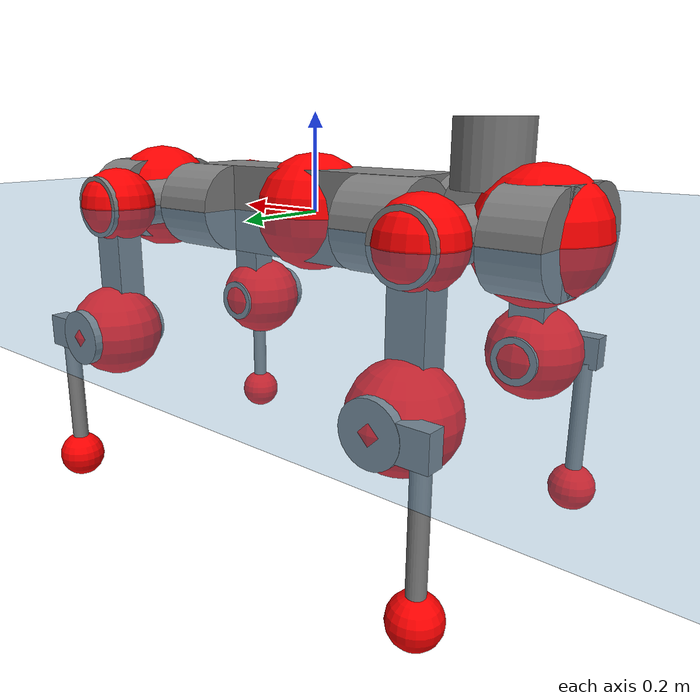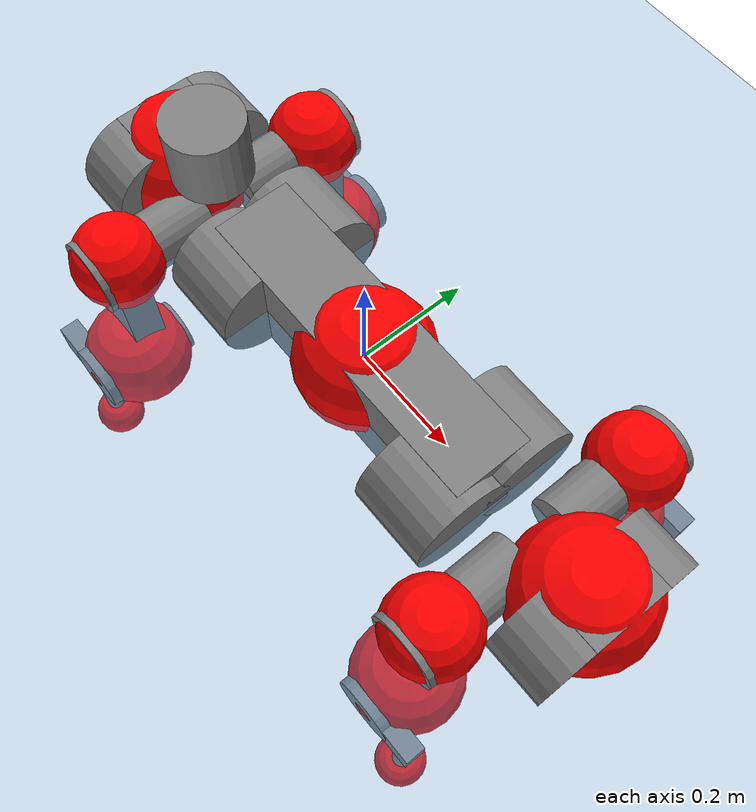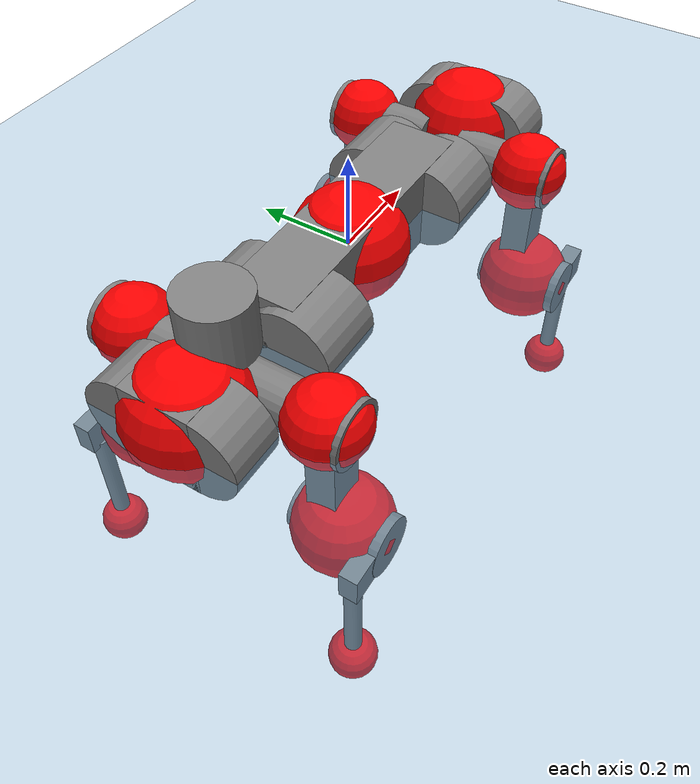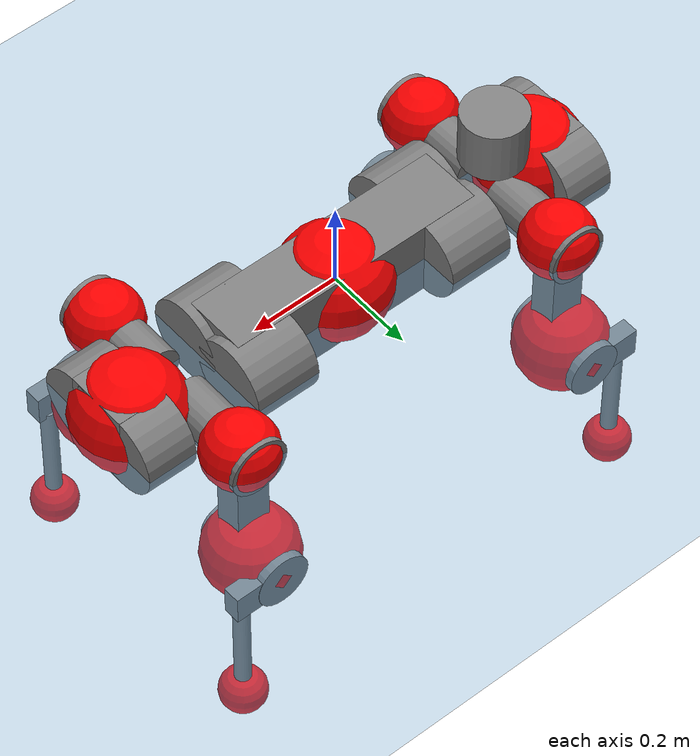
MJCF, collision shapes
<mujoco model="anymal_c">
  <compiler angle="radian" assetdir="assets" balanceinertia="true" inertiafromgeom="false"/>

  <option timestep="0.005" density="1.2" viscosity="2e-05"/>

  <size nkey="1"/>

  <visual>
    <quality shadowsize="8192"/>
    <map shadowclip="0.5"/>
  </visual>

  <default>
    <default class="/">
      <material specular="0" shininess="0.25"/>
      <geom contype="0" conaffinity="0" group="1" solref="-1000 -80"/>
      <site size="0.01 0.005 0.005" group="5"/>
      <general forcelimited="true" forcerange="-80 80" biastype="affine" gainprm="80" biasprm="0 -80 -2"/>
      <default class="anymal_c">
        <joint armature="0.01" damping="0.01" frictionloss="0.1"/>
        <default class="visual">
          <geom type="mesh" group="2"/>
          <default class="visual_zflip"/>
        </default>
        <default class="collision">
          <geom type="cylinder" group="3"/>
          <default class="foot">
            <geom size="0.03 0 0" type="sphere" condim="6" priority="1" friction="0.8 0.02 0.01" solimp="0.015 1 0.03"/>
          </default>
        </default>
      </default>
      <default class="reward_collision_sphere">
        <geom group="5" rgba="1 0 0 1"/>
      </default>
    </default>
  </default>

  <asset>
    <texture type="skybox" colorspace="auto" name="//unnamed_texture_0" builtin="gradient" rgb1="0.95 0.95 0.95" rgb2="0.95 0.95 0.95" width="100" height="600"/>
    <texture type="2d" colorspace="auto" name="texplane" builtin="checker" rgb1="0.345 0.575 0.748" rgb2="0.345 0.575 0.748" markrgb="1 1 1" width="512" height="512"/>
    <texture type="2d" colorspace="linear" name="base" file="base.png"/>
    <texture type="2d" colorspace="linear" name="top_shell" file="top_shell.png"/>
    <texture type="2d" colorspace="linear" name="bottom_shell" file="bottom_shell.png"/>
    <texture type="2d" colorspace="linear" name="remote" file="remote.png"/>
    <texture type="2d" colorspace="linear" name="hatch" file="hatch.png"/>
    <texture type="2d" colorspace="linear" name="handle" file="handle.png"/>
    <texture type="2d" colorspace="linear" name="face" file="face.png"/>
    <texture type="2d" colorspace="linear" name="battery" file="battery.png"/>
    <texture type="2d" colorspace="linear" name="lidar_cage" file="lidar_cage.png"/>
    <texture type="2d" colorspace="linear" name="depth_camera" file="depth_camera.png"/>
    <texture type="2d" colorspace="linear" name="wide_angle_camera" file="wide_angle_camera.png"/>
    <texture type="2d" colorspace="linear" name="lidar" file="lidar.png"/>
    <texture type="2d" colorspace="linear" name="drive" file="drive.png"/>
    <texture type="2d" colorspace="linear" name="hip_l" file="hip_l.png"/>
    <texture type="2d" colorspace="linear" name="shank_l" file="shank_l.png"/>
    <texture type="2d" colorspace="linear" name="foot" file="foot.png"/>
    <texture type="2d" colorspace="linear" name="thigh" file="thigh.png"/>
    <texture type="2d" colorspace="linear" name="shank_r" file="shank_r.png"/>
    <texture type="2d" colorspace="linear" name="hip_r" file="hip_r.png"/>
    <material name="MatPlane" class="/" texture="texplane" texuniform="true" texrepeat="2 2" specular="0.9" shininess="0.5"/>
    <material name="black_plastic" class="/" rgba="0.007 0.007 0.007 1"/>
    <material name="green" class="/" rgba="0.052 0.178 0.033 1"/>
    <material name="red" class="/" rgba="0.178 0.006 0.005 1"/>
    <material name="yellow" class="/" rgba="0.178 0.119 0.006 1"/>
    <material name="lwl" class="/" rgba="0.8 0.8 0.8 1"/>
    <material name="base" class="/" texture="base"/>
    <material name="top_shell" class="/" texture="top_shell"/>
    <material name="bottom_shell" class="/" texture="bottom_shell"/>
    <material name="hip_l" class="/" texture="hip_l"/>
    <material name="thigh" class="/" texture="thigh"/>
    <material name="shank_l" class="/" texture="shank_l"/>
    <material name="foot" class="/" texture="foot"/>
    <material name="hip_r" class="/" texture="hip_r"/>
    <material name="shank" class="/" texture="shank_r"/>
    <material name="hatch" class="/" texture="hatch"/>
    <material name="remote" class="/" texture="remote"/>
    <material name="handle" class="/" texture="handle"/>
    <material name="face" class="/" texture="face"/>
    <material name="depth_camera" class="/" texture="depth_camera"/>
    <material name="wide_angle_camera" class="/" texture="wide_angle_camera"/>
    <material name="battery" class="/" texture="battery"/>
    <material name="lidar_cage" class="/" texture="lidar_cage"/>
    <material name="lidar" class="/" texture="lidar"/>
    <material name="drive" class="/" texture="drive"/>
    <mesh name="base_0" class="/" file="base_0.obj"/>
    <mesh name="base_1" class="/" file="base_1.obj"/>
    <mesh name="base_2" class="/" file="base_2.obj"/>
    <mesh name="base_3" class="/" file="base_3.obj"/>
    <mesh name="base_4" class="/" file="base_4.obj"/>
    <mesh name="base_5" class="/" file="base_5.obj"/>
    <mesh name="top_shell" class="/" file="top_shell.obj"/>
    <mesh name="bottom_shell" class="/" file="bottom_shell.obj"/>
    <mesh name="remote" class="/" file="remote.obj"/>
    <mesh name="handle" class="/" file="handle.obj"/>
    <mesh name="face" class="/" file="face.obj"/>
    <mesh name="wide_angle_camera" class="/" file="wide_angle_camera.obj"/>
    <mesh name="depth_camera" class="/" file="depth_camera.obj"/>
    <mesh name="battery" class="/" file="battery.obj"/>
    <mesh name="lidar_cage" class="/" file="lidar_cage.obj"/>
    <mesh name="lidar" class="/" file="lidar.obj"/>
    <mesh name="drive" class="/" file="drive.obj"/>
    <mesh name="hip_l" class="/" file="hip_l.obj"/>
    <mesh name="thigh" class="/" file="thigh.obj"/>
    <mesh name="shank_l" class="/" file="shank_l.obj"/>
    <mesh name="foot" class="/" file="foot.obj"/>
    <mesh name="hip_r" class="/" file="hip_r.obj"/>
    <mesh name="hatch" class="/" file="hatch.obj"/>
    <mesh name="shank_r" class="/" file="shank_r.obj"/>
  </asset>

  <worldbody>
    <geom name="floor" class="/" size="100 100 0.125" type="plane" group="0" material="MatPlane"/>
    <light name="toplight_shadow" class="/" pos="0 0 5" dir="0.0990148 0.0990148 -0.990148" type="directional" ambient="0.04 0.04 0.04" diffuse="0.55 0.55 0.55" specular="0.12 0.12 0.12"/>
    <light name="toplight_fill" class="/" pos="0 0 5" dir="0.0990148 0.0990148 -0.990148" type="directional" castshadow="false" ambient="0.04 0.04 0.04" diffuse="0.3 0.3 0.3" specular="0.08 0.08 0.08"/>
    <body name="trunk" childclass="anymal_c" pos="0.00260801 -0.000528753 0.000120743" quat="0.999999 -0.00120966 -0.000212761 0.000201139">
      <inertial pos="-4.5833e-06 -0.000467832 0.0498501" quat="0.498041 0.502503 0.500427 0.499018" mass="19.0912" diaginertia="1.0767 0.448271 0.20404"/>
      <joint name="//unnamed_joint_0" type="free" armature="0" damping="0" frictionloss="0"/>
      <geom name="//unnamed_geom_1" class="visual" material="green" mesh="base_0"/>
      <geom name="//unnamed_geom_2" class="visual" material="yellow" mesh="base_1"/>
      <geom name="//unnamed_geom_3" class="visual" material="red" mesh="base_2"/>
      <geom name="//unnamed_geom_4" class="visual" material="black_plastic" mesh="base_3"/>
      <geom name="//unnamed_geom_5" class="visual" material="lwl" mesh="base_4"/>
      <geom name="//unnamed_geom_6" class="visual" material="base" mesh="base_5"/>
      <geom name="trunk_1" class="collision" size="0.294084 0.0709858 0.0912675" type="box"/>
      <geom name="trunk_2" class="collision" size="0.0912675 0.073521" pos="0.241888 0.0656616 0" quat="0.707107 0 0.707107 0"/>
      <geom name="trunk_3" class="collision" size="0.0912675 0.073521" pos="-0.241888 0.0656616 0" quat="0.707107 0 0.707107 0"/>
      <geom name="trunk_4" class="collision" size="0.0912675 0.073521" pos="0.241888 -0.0656616 0" quat="0.707107 0 0.707107 0"/>
      <geom name="trunk_5" class="collision" size="0.0912675 0.073521" pos="-0.241888 -0.0656616 0" quat="0.707107 0 0.707107 0"/>
      <geom name="//unnamed_geom_12" class="visual" material="top_shell" mesh="top_shell"/>
      <geom name="//unnamed_geom_13" class="visual" material="bottom_shell" mesh="bottom_shell"/>
      <geom name="//unnamed_geom_14" class="visual" material="remote" mesh="remote"/>
      <geom name="//unnamed_geom_15" class="visual" material="handle" mesh="handle"/>
      <geom name="//unnamed_geom_16" class="visual" pos="0.460977 0 0" quat="1 0 0 0" material="face" mesh="face"/>
      <geom name="trunk_6" class="collision" size="0.0557746 0.0709858 0.0912675" pos="0.522144 0 0" type="box"/>
      <geom name="//unnamed_geom_18" class="collision" size="0.0912675 0.0557746" pos="0.522144 0.0656616 0" quat="0.707107 0 0.707107 0"/>
      <geom name="//unnamed_geom_19" class="collision" size="0.0912675 0.0557746" pos="0.522144 -0.0656616 0" quat="0.707107 0 0.707107 0"/>
      <geom name="//unnamed_geom_20" class="visual" pos="0.513409 0 -0.0280571" quat="0.965926 0 0.258819 0" material="depth_camera" mesh="depth_camera"/>
      <geom name="//unnamed_geom_21" class="visual" pos="0.570521 0 0.0148517" material="wide_angle_camera" mesh="wide_angle_camera"/>
      <geom name="//unnamed_geom_22" class="visual_zflip" pos="-0.460977 0 0" quat="0 0 0 1" material="face" mesh="face"/>
      <geom name="trunk_7" class="collision" size="0.0557746 0.0709858 0.0912675" pos="-0.522144 0 0" quat="0 0 0 1" type="box"/>
      <geom name="//unnamed_geom_24" class="collision" size="0.0912675 0.0557746" pos="-0.522144 -0.0656616 0" quat="0 -0.707107 0 0.707107"/>
      <geom name="//unnamed_geom_25" class="collision" size="0.0912675 0.0557746" pos="-0.522144 0.0656616 0" quat="0 -0.707107 0 0.707107"/>
      <geom name="//unnamed_geom_26" class="visual" pos="-0.513409 0 -0.0280571" quat="0 -0.258819 0 0.965926" material="depth_camera" mesh="depth_camera"/>
      <geom name="//unnamed_geom_27" class="visual_zflip" pos="-0.570521 0 0.0148517" quat="0 0 0 1" material="wide_angle_camera" mesh="wide_angle_camera"/>
      <geom name="//unnamed_geom_28" class="visual" material="battery" mesh="battery"/>
      <geom name="//unnamed_geom_29" class="visual" pos="0 0.0694316 0.0297327" quat="0.683013 -0.183013 0.183013 0.683013" material="depth_camera" mesh="depth_camera"/>
      <geom name="//unnamed_geom_30" class="visual" pos="0 -0.0694316 0.0297327" quat="0.683013 0.183013 0.183013 -0.683013" material="depth_camera" mesh="depth_camera"/>
      <geom name="//unnamed_geom_31" class="visual" pos="-0.404814 0 0.0729193" quat="1 0 0 0" material="lidar_cage" mesh="lidar_cage"/>
      <geom name="trunk_8" class="collision" size="0.0709858 0.060845" pos="-0.404814 0 0.132445"/>
      <geom name="//unnamed_geom_33" class="visual" pos="-0.404814 -6.8401e-05 0.141077" quat="0.707107 0 0 -0.707107" material="lidar" mesh="lidar"/>
      <geom name="//unnamed_geom_34" class="visual" pos="0.333527 0.0975736 -9.32832e-10" quat="0.258819 0.965926 0 0" material="drive" mesh="drive"/>
      <geom name="//unnamed_geom_35" class="visual" pos="0.333527 -0.0975736 9.32832e-10" quat="0.258819 -0.965926 0 0" material="drive" mesh="drive"/>
      <geom name="//unnamed_geom_36" class="visual" pos="-0.333527 0.0975736 9.32832e-10" quat="0 0 0.965926 -0.258819" material="drive" mesh="drive"/>
      <geom name="//unnamed_geom_37" class="visual" pos="-0.333527 -0.0975736 -9.32832e-10" quat="0 0 -0.965926 -0.258819" material="drive" mesh="drive"/>
      <geom name="//unnamed_geom_38" class="visual" pos="0.129007 0 0.0724233" quat="1 0 0 0" material="hatch" mesh="hatch"/>
      <geom name="//unnamed_geom_39" class="reward_collision_sphere" size="0.12169"/>
      <geom name="//unnamed_geom_40" class="reward_collision_sphere" size="0.12169" pos="0.500457 0 0"/>
      <geom name="//unnamed_geom_41" class="reward_collision_sphere" size="0.12169" pos="-0.500457 0 0"/>
      <site name="imu" pos="0.274453 0.00975365 0.0579661" size="0.0101408"/>
      <camera name="track" pos="0 -1.87605 0" quat="0.707107 0.707107 0 0" mode="trackcom"/>
      <camera name="ego_camera" pos="0.500457 0 -0.039684" quat="-0.5 -0.5 0.5 0.5"/>
      <body name="LF_HIP" pos="0.333997 0.0989883 -0.000119037" quat="0.258805 0.96593 -0.000136631 -0.000171992">
        <inertial pos="0.0620424 -0.0155209 -0.00787024" quat="-0.128824 0.710232 -0.134425 0.6789" mass="2.87081" diaginertia="0.0101711 0.00353943 0.00315837"/>
        <joint name="LF_HAA" pos="0 0 0" axis="0.999883 0.00482661 -0.0144917" range="-0.66737 0.490575" armature="0.0100724" damping="0.0103408" frictionloss="0.102384"/>
        <geom name="//unnamed_geom_42" class="visual" pos="0 -5.48743e-05 9.01305e-06" quat="0.258819 -0.965926 0 0" material="hip_l" mesh="hip_l"/>
        <geom name="//unnamed_geom_43" class="visual" pos="0.0666164 -0.0784468 -0.0456913" quat="0.183013 -0.683013 0.683013 0.183013" material="drive" mesh="drive"/>
        <geom name="//unnamed_geom_44" class="collision" size="0.0507042 0.0709858" pos="0.0666164 -0.0112186 -0.00685045" quat="-0.353553 -0.612372 0.612372 -0.353553"/>
        <body name="LF_THIGH" pos="0.0671208 -0.0676337 -0.0413014" quat="0.183042 -0.682265 0.683768 0.182952">
          <inertial pos="0.0360794 -0.000898228 -0.246191" quat="0.993202 -0.00544443 -0.0803725 0.0840209" mass="3.11624" diaginertia="0.0504448 0.0214122 0.00406994"/>
          <joint name="LF_HFE" pos="0 0 0" axis="0.999996 -0.000494988 -0.00289937" range="-3.15272 3.13426" armature="0.0104218" damping="0.00837109" frictionloss="0.105897"/>
          <geom name="//unnamed_geom_45" class="visual" pos="0.00346399 5.45844e-06 0" quat="0.707107 0 0 -0.707107" material="thigh" mesh="thigh"/>
          <geom name="//unnamed_geom_46" class="collision" size="0.0659154 0.0405633" pos="0.0444851 0 0" quat="0.5 0.5 -0.5 -0.5"/>
          <geom name="//unnamed_geom_47" class="collision" size="0.0380281 0.0304225 0.143304" pos="0.0333638 0 -0.140198" quat="0.707107 0 0 -0.707107" type="box"/>
          <geom name="//unnamed_geom_48" class="visual" pos="0.111546 0 -0.282748" quat="1 0 0 0" material="drive" mesh="drive"/>
          <geom name="//unnamed_geom_49" class="collision" size="0.0507042 0.0709858" pos="0.0336975 0 -0.282748" quat="0.707107 0 0.707107 0"/>
          <geom name="//unnamed_geom_50" class="reward_collision_sphere" size="0.0811267" pos="0.0278032 0 0"/>
          <body name="LF_SHANK" pos="0.111391 -0.00286861 -0.282634" quat="1 0.000478962 0.000226735 -0.000170092">
            <inertial pos="0.00402879 -0.0571303 -0.078821" quat="0.99321 -0.113132 -0.000653954 -0.0271156" mass="0.612925" diaginertia="0.0176992 0.00701596 0.00109649"/>
            <joint name="LF_KFE" pos="0 0 0" axis="0.999996 0.00155444 0.00215073" range="-3.18954 3.15015" armature="0.0102303" damping="0" frictionloss="0.10258"/>
            <geom name="//unnamed_geom_51" class="visual" pos="0.00112953 0.00602273 0" quat="0.707107 0 0 -0.707107" material="shank_l" mesh="shank_l"/>
            <geom name="LF_kfe_act" class="collision" size="0.060845 0.0202817" pos="0.0222425 0 0" quat="0.5 0.5 -0.5 -0.5"/>
            <geom name="//unnamed_geom_53" class="collision" size="0.0583088 0.0342253 0.0192676" pos="0.0222425 -0.0539354 0" quat="0.5 0.5 -0.5 -0.5" type="box"/>
            <geom name="//unnamed_geom_54" class="visual" pos="0.014513 -0.0805582 -0.3353" quat="0.382683 0 0 -0.92388" material="foot" mesh="foot"/>
            <geom name="LF_calf" class="collision" size="0.0177465 0.143241" pos="0.0145133 -0.0824991 -0.16765" quat="0.707107 0 0 -0.707107"/>
            <geom name="LF_foot" class="foot" size="0.0336599" pos="0.0145133 -0.0824991 -0.312978" quat="0.707107 0 0 -0.707107"/>
            <geom name="//unnamed_geom_57" class="reward_collision_sphere" size="0.101408" pos="-0.0556064 0 0"/>
            <geom name="//unnamed_geom_58" class="reward_collision_sphere" size="0.0507042" pos="0.0145133 -0.0824991 -0.312978"/>
            <site name="LF_foot" class="foot" pos="0.0145133 -0.0824991 -0.312978" quat="0.707107 0 0 -0.707107" size="0.0101408"/>
          </body>
        </body>
      </body>
      <body name="RF_HIP" pos="0.333471 -0.0977973 -0.00233083" quat="0.258264 -0.966074 -0.000735102 -0.000576747">
        <inertial pos="0.0633958 0.012552 -0.00841674" quat="0.127361 0.679188 0.135019 0.710107" mass="2.86977" diaginertia="0.0096945 0.00354659 0.00310054"/>
        <joint name="RF_HAA" pos="0 0 0" axis="1 -0.000136025 0.00058584" range="-0.511462 0.719988" armature="0.00965989" damping="0.0135062" frictionloss="0.0903571"/>
        <geom name="//unnamed_geom_59" class="visual" pos="0 5.48738e-05 9.01303e-06" quat="0.258819 0.965926 0 0" material="hip_r" mesh="hip_r"/>
        <geom name="//unnamed_geom_60" class="visual" pos="0.0666164 0.0784468 -0.0456913" quat="0.183013 0.683013 0.683013 -0.183013" material="drive" mesh="drive"/>
        <geom name="//unnamed_geom_61" class="collision" size="0.0507042 0.0709858" pos="0.0666164 0.0112186 -0.00685045" quat="-0.353553 0.612372 0.612372 0.353553"/>
        <body name="RF_THIGH" pos="0.0668693 0.065174 -0.0416752" quat="0.182984 0.682892 0.68314 -0.183019">
          <inertial pos="0.0348651 -0.00183562 -0.243854" quat="0.993139 -0.00700878 -0.0814399 0.0836289" mass="3.23862" diaginertia="0.0512355 0.0219732 0.00412834"/>
          <joint name="RF_HFE" pos="0 0 0" axis="1 -0.000735627 5.49363e-05" range="-3.13722 3.17965" armature="0.0102431" damping="0.0142364" frictionloss="0.0997452"/>
          <geom name="//unnamed_geom_62" class="visual" pos="0.00346399 5.45844e-06 0" quat="0.707107 0 0 -0.707107" material="thigh" mesh="thigh"/>
          <geom name="//unnamed_geom_63" class="collision" size="0.0659154 0.0405633" pos="0.0444851 0 0" quat="0.5 0.5 0.5 0.5"/>
          <geom name="//unnamed_geom_64" class="collision" size="0.0380281 0.0304225 0.143304" pos="0.0333638 0 -0.140198" quat="0.707107 0 0 0.707107" type="box"/>
          <geom name="//unnamed_geom_65" class="visual" pos="0.111546 0 -0.282748" quat="1 0 0 0" material="drive" mesh="drive"/>
          <geom name="//unnamed_geom_66" class="collision" size="0.0507042 0.0709858" pos="0.0336975 0 -0.282748" quat="0.707107 0 0.707107 0"/>
          <geom name="//unnamed_geom_67" class="reward_collision_sphere" size="0.0811267" pos="0.0278032 0 0"/>
          <body name="RF_SHANK" pos="0.111801 -0.00166821 -0.282084" quat="1 -3.02584e-05 8.3948e-06 4.4734e-05">
            <inertial pos="0.00652485 0.0580493 -0.0800869" quat="0.994041 0.105957 0.00528762 0.025037" mass="0.608835" diaginertia="0.0172599 0.00669175 0.00105347"/>
            <joint name="RF_KFE" pos="0 0 0" axis="0.999968 -0.00803234 -0.00038702" range="-3.13059 3.16423" armature="0.010589" damping="0.0177013" frictionloss="0.104382"/>
            <geom name="//unnamed_geom_68" class="visual" pos="0.00112953 -0.00602272 0" quat="0.707107 0 0 0.707107" material="shank" mesh="shank_r"/>
            <geom name="RF_kfe_act" class="collision" size="0.060845 0.0202817" pos="0.0222425 0 0" quat="0.5 0.5 0.5 0.5"/>
            <geom name="//unnamed_geom_70" class="collision" size="0.0583088 0.0342253 0.0192676" pos="0.0222425 0.0539354 0" quat="0.5 0.5 0.5 0.5" type="box"/>
            <geom name="//unnamed_geom_71" class="visual" pos="0.0145135 0.0805582 -0.3353" quat="0.382683 0 0 0.92388" material="foot" mesh="foot"/>
            <geom name="RF_calf" class="collision" size="0.0177465 0.143241" pos="0.0145133 0.0824991 -0.16765" quat="0.707107 0 0 0.707107"/>
            <geom name="RF_foot" class="foot" size="0.0282665" pos="0.0145133 0.0824991 -0.312978" quat="0.707107 0 0 0.707107"/>
            <geom name="//unnamed_geom_74" class="reward_collision_sphere" size="0.101408" pos="-0.0556064 0 0"/>
            <geom name="//unnamed_geom_75" class="reward_collision_sphere" size="0.0507042" pos="0.0145133 0.0824991 -0.312978"/>
            <site name="RF_foot" class="foot" pos="0.0145133 0.0824991 -0.312978" quat="0.707107 0 0 0.707107" size="0.0101408"/>
          </body>
        </body>
      </body>
      <body name="LH_HIP" pos="-0.332664 0.0979335 -0.000331209" quat="-6.28915e-06 -5.50443e-07 0.965926 -0.258818">
        <inertial pos="0.0624545 0.016637 -0.00995308" quat="0.129179 0.686284 0.133756 0.703162" mass="2.95799" diaginertia="0.009905 0.00352617 0.00322241"/>
        <joint name="LH_HAA" pos="0 0 0" axis="0.999998 -0.00201749 0.000249736" range="-0.487387 0.710493" armature="0.00916224" damping="0.0156055" frictionloss="0.113455"/>
        <geom name="//unnamed_geom_76" class="visual" pos="0 5.48738e-05 9.01303e-06" quat="-0.258819 -0.965926 0 0" material="hip_r" mesh="hip_r"/>
        <geom name="//unnamed_geom_77" class="visual" pos="0.0666164 0.0784468 -0.0456913" quat="0.183013 0.683013 0.683013 -0.183013" material="drive" mesh="drive"/>
        <geom name="//unnamed_geom_78" class="collision" size="0.0507042 0.0709858" pos="0.0666164 0.0112186 -0.00685045" quat="-0.353553 0.612372 0.612372 0.353553"/>
        <body name="LH_THIGH" pos="0.0657606 0.0654607 -0.0403295" quat="0.183006 0.68308 0.68295 -0.183001">
          <inertial pos="0.0341626 -0.000264834 -0.244112" quat="0.992624 -0.00649202 -0.0786033 0.0920696" mass="3.26054" diaginertia="0.0510867 0.0212778 0.00402333"/>
          <joint name="LH_HFE" pos="0 0 0" axis="0.999997 0.00235568 -0.000844252" stiffness="0.00209676" range="-3.13069 3.15049" armature="0.01097" damping="0.00611544" frictionloss="0.101876"/>
          <geom name="//unnamed_geom_79" class="visual" pos="0.00346399 5.45844e-06 0" quat="0.707107 0 0 -0.707107" material="thigh" mesh="thigh"/>
          <geom name="//unnamed_geom_80" class="collision" size="0.0659154 0.0405633" pos="0.0444851 0 0" quat="0.5 0.5 -0.5 -0.5"/>
          <geom name="//unnamed_geom_81" class="collision" size="0.0380281 0.0304225 0.143304" pos="0.0333638 0 -0.140198" quat="0.707107 0 0 -0.707107" type="box"/>
          <geom name="//unnamed_geom_82" class="visual" pos="0.111546 0 -0.282748" quat="1 0 0 0" material="drive" mesh="drive"/>
          <geom name="//unnamed_geom_83" class="collision" size="0.0507042 0.0709858" pos="0.0336975 0 -0.282748" quat="0.707107 0 0.707107 0"/>
          <geom name="//unnamed_geom_84" class="reward_collision_sphere" size="0.0811267" pos="0.0278032 0 0"/>
          <body name="LH_SHANK" pos="0.111745 -0.00112207 -0.284858" quat="1 -0.000124716 0.0003444 1.94294e-05">
            <inertial pos="0.00697463 0.0599233 -0.0794458" quat="0.992819 0.116913 -0.00185387 0.0252535" mass="0.606348" diaginertia="0.0170055 0.00667642 0.0010286"/>
            <joint name="LH_KFE" pos="0 0 0" axis="0.999983 0.00137991 0.00566137" range="-3.14824 3.13436" armature="0.0103831" damping="0.00269494" frictionloss="0.114474"/>
            <geom name="//unnamed_geom_85" class="visual" pos="0.00112953 -0.00602272 0" quat="-0.707107 0 0 -0.707107" material="shank" mesh="shank_r"/>
            <geom name="LH_kfe_act" class="collision" size="0.060845 0.0202817" pos="0.0222425 0 0" quat="0.5 0.5 -0.5 -0.5"/>
            <geom name="//unnamed_geom_87" class="collision" size="0.0583088 0.0342253 0.0192676" pos="0.0222425 0.0539354 0" quat="0.5 0.5 -0.5 -0.5" type="box"/>
            <geom name="//unnamed_geom_88" class="visual" pos="0.0145135 0.0805582 -0.3353" quat="-0.382683 0 0 -0.92388" material="foot" mesh="foot"/>
            <geom name="LH_calf" class="collision" size="0.0177465 0.143241" pos="0.0145133 0.0824991 -0.16765" quat="0.707107 0 0 -0.707107"/>
            <geom name="LH_foot" class="foot" size="0.0317252" pos="0.0145133 0.0824991 -0.312978" quat="0.707107 0 0 -0.707107"/>
            <geom name="//unnamed_geom_91" class="reward_collision_sphere" size="0.101408" pos="-0.0556064 0 0"/>
            <geom name="//unnamed_geom_92" class="reward_collision_sphere" size="0.0507042" pos="0.0145133 0.0824991 -0.312978"/>
            <site name="LH_foot" class="foot" pos="0.0145133 0.0824991 -0.312978" quat="0.707107 0 0 -0.707107" size="0.0101408"/>
          </body>
        </body>
      </body>
      <body name="RH_HIP" pos="-0.334416 -0.0983626 -0.00105074" quat="-0.000700991 0.00101442 -0.966024 -0.258451">
        <inertial pos="0.0656029 -0.0128556 -0.0110473" quat="-0.123067 0.713043 -0.132271 0.677443" mass="2.90108" diaginertia="0.00999617 0.00356418 0.00315377"/>
        <joint name="RH_HAA" pos="0 0 0" axis="0.9999 -0.00491906 -0.0132572" range="-0.741006 0.482684" armature="0.0101661" damping="0.0116191" frictionloss="0.0978299"/>
        <geom name="//unnamed_geom_93" class="visual" pos="0 -5.48743e-05 9.01305e-06" quat="-0.258819 0.965926 0 0" material="hip_l" mesh="hip_l"/>
        <geom name="//unnamed_geom_94" class="visual" pos="0.0666164 -0.0784468 -0.0456913" quat="-0.183013 0.683013 -0.683013 -0.183013" material="drive" mesh="drive"/>
        <geom name="//unnamed_geom_95" class="collision" size="0.0507042 0.0709858" pos="0.0666164 -0.0112186 -0.00685045" quat="0.353553 0.612372 -0.612372 0.353553"/>
        <body name="RH_THIGH" pos="0.067499 -0.0693079 -0.0443759" quat="-0.183079 0.683015 -0.682986 -0.183038">
          <inertial pos="0.0343761 -0.000198839 -0.243667" quat="0.993116 -0.00655707 -0.0807336 0.0846175" mass="3.11385" diaginertia="0.0517981 0.0220102 0.00402243"/>
          <joint name="RH_HFE" pos="0 0 0" axis="0.999997 0.00110703 -0.00221833" range="-3.14182 3.19028" armature="0.0100095" damping="0.00764463" frictionloss="0.0976965"/>
          <geom name="//unnamed_geom_96" class="visual" pos="0.00346399 5.45844e-06 0" quat="0.707107 0 0 -0.707107" material="thigh" mesh="thigh"/>
          <geom name="//unnamed_geom_97" class="collision" size="0.0659154 0.0405633" pos="0.0444851 0 0" quat="0.5 0.5 0.5 0.5"/>
          <geom name="//unnamed_geom_98" class="collision" size="0.0380281 0.0304225 0.143304" pos="0.0333638 0 -0.140198" quat="0.707107 0 0 0.707107" type="box"/>
          <geom name="//unnamed_geom_99" class="visual" pos="0.111546 0 -0.282748" quat="1 0 0 0" material="drive" mesh="drive"/>
          <geom name="//unnamed_geom_100" class="collision" size="0.0507042 0.0709858" pos="0.0336975 0 -0.282748" quat="0.707107 0 0.707107 0"/>
          <geom name="//unnamed_geom_101" class="reward_collision_sphere" size="0.0811267" pos="0.0278032 0 0"/>
          <body name="RH_SHANK" pos="0.111819 0.000518077 -0.282092" quat="1 -3.71301e-05 0.000113658 1.15843e-05">
            <inertial pos="0.00463938 -0.0575733 -0.0802359" quat="0.992955 -0.115515 -0.00264337 -0.0262512" mass="0.608197" diaginertia="0.0170933 0.00670608 0.00110054"/>
            <joint name="RH_KFE" pos="0 0 0" axis="0.999896 -0.0142836 0.00222618" range="-3.11054 3.14216" armature="0.0107028" damping="0.0193882" frictionloss="0.106757"/>
            <geom name="//unnamed_geom_102" class="visual" pos="0.00112953 0.00602273 0" quat="0.707107 0 0 -0.707107" material="shank_l" mesh="shank_l"/>
            <geom name="RH_kfe_act" class="collision" size="0.060845 0.0202817" pos="0.0222425 0 0" quat="0.5 0.5 0.5 0.5"/>
            <geom name="//unnamed_geom_104" class="collision" size="0.0583088 0.0342253 0.0192676" pos="0.0222425 -0.0539354 0" quat="0.5 0.5 0.5 0.5" type="box"/>
            <geom name="//unnamed_geom_105" class="visual" pos="0.014513 -0.0805582 -0.3353" quat="0.382683 0 0 -0.92388" material="foot" mesh="foot"/>
            <geom name="RH_calf" class="collision" size="0.0177465 0.143241" pos="0.0145133 -0.0824991 -0.16765" quat="0.707107 0 0 0.707107"/>
            <geom name="RH_foot" class="foot" size="0.0273738" pos="0.0145133 -0.0824991 -0.312978" quat="0.707107 0 0 0.707107"/>
            <geom name="//unnamed_geom_108" class="reward_collision_sphere" size="0.101408" pos="-0.0556064 0 0"/>
            <geom name="//unnamed_geom_109" class="reward_collision_sphere" size="0.0507042" pos="0.0145133 -0.0824991 -0.312978"/>
            <site name="RH_foot" class="foot" pos="0.0145133 -0.0824991 -0.312978" quat="0.707107 0 0 0.707107" size="0.0101408"/>
          </body>
        </body>
      </body>
    </body>
  </worldbody>

  <contact>
    <pair class="/" geom1="floor" geom2="LF_foot" name="//unnamed_contact_0"/>
    <pair class="/" geom1="floor" geom2="RF_foot" name="//unnamed_contact_1"/>
    <pair class="/" geom1="floor" geom2="LH_foot" name="//unnamed_contact_2"/>
    <pair class="/" geom1="floor" geom2="RH_foot" name="//unnamed_contact_3"/>
  </contact>

  <actuator>
    <general name="LF_HAA" class="/" joint="LF_HAA" forcerange="-81.4419 81.4419" gainprm="80.6873" biasprm="0 -80.6873 -1.96584"/>
    <general name="LF_HFE" class="/" joint="LF_HFE" forcerange="-80.4369 80.4369" gainprm="80.6873" biasprm="0 -80.6873 -1.96584"/>
    <general name="LF_KFE" class="/" joint="LF_KFE" forcerange="-80.3752 80.3752" gainprm="80.6873" biasprm="0 -80.6873 -1.96584"/>
    <general name="RF_HAA" class="/" joint="RF_HAA" forcerange="-81.7714 81.7714" gainprm="80.6873" biasprm="0 -80.6873 -1.96584"/>
    <general name="RF_HFE" class="/" joint="RF_HFE" forcerange="-84.4992 84.4992" gainprm="80.6873" biasprm="0 -80.6873 -1.96584"/>
    <general name="RF_KFE" class="/" joint="RF_KFE" forcerange="-81.1728 81.1728" gainprm="80.6873" biasprm="0 -80.6873 -1.96584"/>
    <general name="LH_HAA" class="/" joint="LH_HAA" forcerange="-89.4591 89.4591" gainprm="80.6873" biasprm="0 -80.6873 -1.96584"/>
    <general name="LH_HFE" class="/" joint="LH_HFE" forcerange="-82.1774 82.1774" gainprm="80.6873" biasprm="0 -80.6873 -1.96584"/>
    <general name="LH_KFE" class="/" joint="LH_KFE" forcerange="-74.435 74.435" gainprm="80.6873" biasprm="0 -80.6873 -1.96584"/>
    <general name="RH_HAA" class="/" joint="RH_HAA" forcerange="-78.6607 78.6607" gainprm="80.6873" biasprm="0 -80.6873 -1.96584"/>
    <general name="RH_HFE" class="/" joint="RH_HFE" forcerange="-89.2737 89.2737" gainprm="80.6873" biasprm="0 -80.6873 -1.96584"/>
    <general name="RH_KFE" class="/" joint="RH_KFE" forcerange="-80.6532 80.6532" gainprm="80.6873" biasprm="0 -80.6873 -1.96584"/>
  </actuator>

  <sensor>
    <gyro site="imu" name="imu_angular_velocity"/>
    <velocimeter site="imu" name="imu_linear_velocity"/>
    <framelinvel objtype="site" objname="LF_foot" name="LF_foot_global_linear_velocity"/>
    <framelinvel objtype="site" objname="RF_foot" name="RF_foot_global_linear_velocity"/>
    <framelinvel objtype="site" objname="LH_foot" name="LH_foot_global_linear_velocity"/>
    <framelinvel objtype="site" objname="RH_foot" name="RH_foot_global_linear_velocity"/>
  </sensor>

  <keyframe>
    <key name="home" qpos="0 0 0.55 1 0 0 0 0 0.4 -0.8 0 -0.4 0.8 0 -0.4 0.8 0 0.4 -0.8"/>
  </keyframe>
</mujoco>
